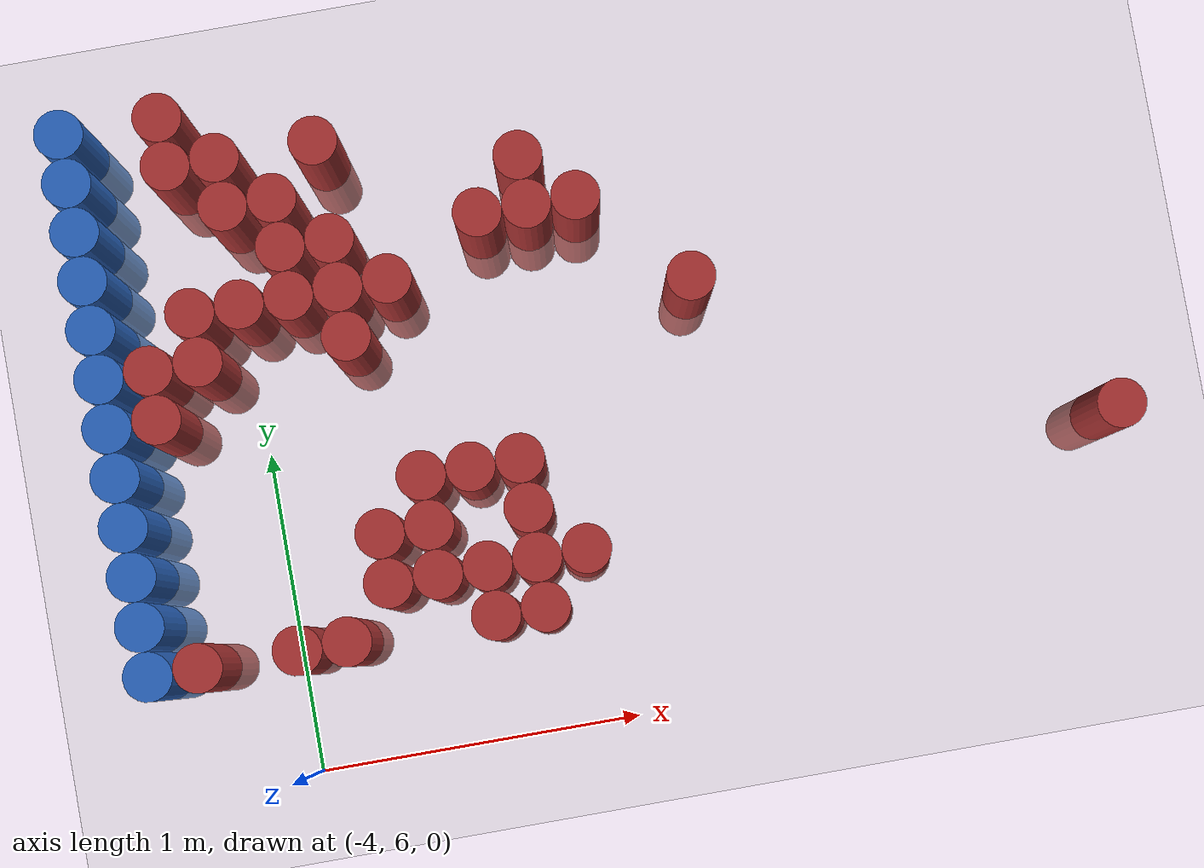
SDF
<sdf version="1.6">
 <world name="default">
  <model name="ground_plane">
   <static>1</static>
   <link name="link">
    <collision name="collision">
     <geometry><plane><normal>0 0 1</normal><size>100 100</size></plane></geometry>
     <surface><friction><ode><mu>100</mu><mu2>50</mu2></ode></friction></surface>
    </collision>
    <visual name="visual">
     <cast_shadows>0</cast_shadows>
     <geometry><plane><normal>0 0 1</normal><size>100 100</size></plane></geometry>
     <material>
      <script><uri>file://media/materials/scripts/gazebo.material</uri><name>Gazebo/Grey</name></script>
     </material>
    </visual>
   </link>
  </model>
  <model name="unit_cylinder_104">
   <static>1</static>
   <pose>-4.425000 6.375000 0.000000 0.000000 0.000000 0.000000</pose>
   <link name="link">
    <inertial>
     <mass>1</mass>
     <inertia><ixx>0.145833</ixx><ixy>0</ixy><ixz>0</ixz><iyy>0.145833</iyy><iyz>0</iyz><izz>0.125</izz></inertia>
    </inertial>
    <collision name="collision">
     <geometry><cylinder><radius>0.075000</radius><length>1</length></cylinder></geometry>
    </collision>
    <visual name="visual">
     <geometry><cylinder><radius>0.075000</radius><length>1</length></cylinder></geometry>
     <material>
      <ambient>0.152000 0.379000 0.720000 1</ambient>
      <diffuse>0.152000 0.379000 0.720000 1</diffuse>
     </material>
     <material>
      <script><name>Gazebo/Grey</name><uri>file://media/materials/scripts/gazebo.material</uri></script>
     </material>
    </visual>
   </link>
  </model>
  <model name="unit_cylinder_105">
   <static>1</static>
   <pose>-4.425000 6.525000 0.000000 0.000000 0.000000 0.000000</pose>
   <link name="link">
    <inertial>
     <mass>1</mass>
     <inertia><ixx>0.145833</ixx><ixy>0</ixy><ixz>0</ixz><iyy>0.145833</iyy><iyz>0</iyz><izz>0.125</izz></inertia>
    </inertial>
    <collision name="collision">
     <geometry><cylinder><radius>0.075000</radius><length>1</length></cylinder></geometry>
    </collision>
    <visual name="visual">
     <geometry><cylinder><radius>0.075000</radius><length>1</length></cylinder></geometry>
     <material>
      <ambient>0.152000 0.379000 0.720000 1</ambient>
      <diffuse>0.152000 0.379000 0.720000 1</diffuse>
     </material>
     <material>
      <script><name>Gazebo/Grey</name><uri>file://media/materials/scripts/gazebo.material</uri></script>
     </material>
    </visual>
   </link>
  </model>
  <model name="unit_cylinder_106">
   <static>1</static>
   <pose>-4.425000 6.675000 0.000000 0.000000 0.000000 0.000000</pose>
   <link name="link">
    <inertial>
     <mass>1</mass>
     <inertia><ixx>0.145833</ixx><ixy>0</ixy><ixz>0</ixz><iyy>0.145833</iyy><iyz>0</iyz><izz>0.125</izz></inertia>
    </inertial>
    <collision name="collision">
     <geometry><cylinder><radius>0.075000</radius><length>1</length></cylinder></geometry>
    </collision>
    <visual name="visual">
     <geometry><cylinder><radius>0.075000</radius><length>1</length></cylinder></geometry>
     <material>
      <ambient>0.152000 0.379000 0.720000 1</ambient>
      <diffuse>0.152000 0.379000 0.720000 1</diffuse>
     </material>
     <material>
      <script><name>Gazebo/Grey</name><uri>file://media/materials/scripts/gazebo.material</uri></script>
     </material>
    </visual>
   </link>
  </model>
  <model name="unit_cylinder_107">
   <static>1</static>
   <pose>-4.425000 6.825000 0.000000 0.000000 0.000000 0.000000</pose>
   <link name="link">
    <inertial>
     <mass>1</mass>
     <inertia><ixx>0.145833</ixx><ixy>0</ixy><ixz>0</ixz><iyy>0.145833</iyy><iyz>0</iyz><izz>0.125</izz></inertia>
    </inertial>
    <collision name="collision">
     <geometry><cylinder><radius>0.075000</radius><length>1</length></cylinder></geometry>
    </collision>
    <visual name="visual">
     <geometry><cylinder><radius>0.075000</radius><length>1</length></cylinder></geometry>
     <material>
      <ambient>0.152000 0.379000 0.720000 1</ambient>
      <diffuse>0.152000 0.379000 0.720000 1</diffuse>
     </material>
     <material>
      <script><name>Gazebo/Grey</name><uri>file://media/materials/scripts/gazebo.material</uri></script>
     </material>
    </visual>
   </link>
  </model>
  <model name="unit_cylinder_108">
   <static>1</static>
   <pose>-4.425000 6.975000 0.000000 0.000000 0.000000 0.000000</pose>
   <link name="link">
    <inertial>
     <mass>1</mass>
     <inertia><ixx>0.145833</ixx><ixy>0</ixy><ixz>0</ixz><iyy>0.145833</iyy><iyz>0</iyz><izz>0.125</izz></inertia>
    </inertial>
    <collision name="collision">
     <geometry><cylinder><radius>0.075000</radius><length>1</length></cylinder></geometry>
    </collision>
    <visual name="visual">
     <geometry><cylinder><radius>0.075000</radius><length>1</length></cylinder></geometry>
     <material>
      <ambient>0.152000 0.379000 0.720000 1</ambient>
      <diffuse>0.152000 0.379000 0.720000 1</diffuse>
     </material>
     <material>
      <script><name>Gazebo/Grey</name><uri>file://media/materials/scripts/gazebo.material</uri></script>
     </material>
    </visual>
   </link>
  </model>
  <model name="unit_cylinder_109">
   <static>1</static>
   <pose>-4.425000 7.125000 0.000000 0.000000 0.000000 0.000000</pose>
   <link name="link">
    <inertial>
     <mass>1</mass>
     <inertia><ixx>0.145833</ixx><ixy>0</ixy><ixz>0</ixz><iyy>0.145833</iyy><iyz>0</iyz><izz>0.125</izz></inertia>
    </inertial>
    <collision name="collision">
     <geometry><cylinder><radius>0.075000</radius><length>1</length></cylinder></geometry>
    </collision>
    <visual name="visual">
     <geometry><cylinder><radius>0.075000</radius><length>1</length></cylinder></geometry>
     <material>
      <ambient>0.152000 0.379000 0.720000 1</ambient>
      <diffuse>0.152000 0.379000 0.720000 1</diffuse>
     </material>
     <material>
      <script><name>Gazebo/Grey</name><uri>file://media/materials/scripts/gazebo.material</uri></script>
     </material>
    </visual>
   </link>
  </model>
  <model name="unit_cylinder_110">
   <static>1</static>
   <pose>-4.425000 7.275000 0.000000 0.000000 0.000000 0.000000</pose>
   <link name="link">
    <inertial>
     <mass>1</mass>
     <inertia><ixx>0.145833</ixx><ixy>0</ixy><ixz>0</ixz><iyy>0.145833</iyy><iyz>0</iyz><izz>0.125</izz></inertia>
    </inertial>
    <collision name="collision">
     <geometry><cylinder><radius>0.075000</radius><length>1</length></cylinder></geometry>
    </collision>
    <visual name="visual">
     <geometry><cylinder><radius>0.075000</radius><length>1</length></cylinder></geometry>
     <material>
      <ambient>0.152000 0.379000 0.720000 1</ambient>
      <diffuse>0.152000 0.379000 0.720000 1</diffuse>
     </material>
     <material>
      <script><name>Gazebo/Grey</name><uri>file://media/materials/scripts/gazebo.material</uri></script>
     </material>
    </visual>
   </link>
  </model>
  <model name="unit_cylinder_111">
   <static>1</static>
   <pose>-4.425000 7.425000 0.000000 0.000000 0.000000 0.000000</pose>
   <link name="link">
    <inertial>
     <mass>1</mass>
     <inertia><ixx>0.145833</ixx><ixy>0</ixy><ixz>0</ixz><iyy>0.145833</iyy><iyz>0</iyz><izz>0.125</izz></inertia>
    </inertial>
    <collision name="collision">
     <geometry><cylinder><radius>0.075000</radius><length>1</length></cylinder></geometry>
    </collision>
    <visual name="visual">
     <geometry><cylinder><radius>0.075000</radius><length>1</length></cylinder></geometry>
     <material>
      <ambient>0.152000 0.379000 0.720000 1</ambient>
      <diffuse>0.152000 0.379000 0.720000 1</diffuse>
     </material>
     <material>
      <script><name>Gazebo/Grey</name><uri>file://media/materials/scripts/gazebo.material</uri></script>
     </material>
    </visual>
   </link>
  </model>
  <model name="unit_cylinder_112">
   <static>1</static>
   <pose>-4.425000 7.575000 0.000000 0.000000 0.000000 0.000000</pose>
   <link name="link">
    <inertial>
     <mass>1</mass>
     <inertia><ixx>0.145833</ixx><ixy>0</ixy><ixz>0</ixz><iyy>0.145833</iyy><iyz>0</iyz><izz>0.125</izz></inertia>
    </inertial>
    <collision name="collision">
     <geometry><cylinder><radius>0.075000</radius><length>1</length></cylinder></geometry>
    </collision>
    <visual name="visual">
     <geometry><cylinder><radius>0.075000</radius><length>1</length></cylinder></geometry>
     <material>
      <ambient>0.152000 0.379000 0.720000 1</ambient>
      <diffuse>0.152000 0.379000 0.720000 1</diffuse>
     </material>
     <material>
      <script><name>Gazebo/Grey</name><uri>file://media/materials/scripts/gazebo.material</uri></script>
     </material>
    </visual>
   </link>
  </model>
  <model name="unit_cylinder_113">
   <static>1</static>
   <pose>-4.425000 7.725000 0.000000 0.000000 0.000000 0.000000</pose>
   <link name="link">
    <inertial>
     <mass>1</mass>
     <inertia><ixx>0.145833</ixx><ixy>0</ixy><ixz>0</ixz><iyy>0.145833</iyy><iyz>0</iyz><izz>0.125</izz></inertia>
    </inertial>
    <collision name="collision">
     <geometry><cylinder><radius>0.075000</radius><length>1</length></cylinder></geometry>
    </collision>
    <visual name="visual">
     <geometry><cylinder><radius>0.075000</radius><length>1</length></cylinder></geometry>
     <material>
      <ambient>0.152000 0.379000 0.720000 1</ambient>
      <diffuse>0.152000 0.379000 0.720000 1</diffuse>
     </material>
     <material>
      <script><name>Gazebo/Grey</name><uri>file://media/materials/scripts/gazebo.material</uri></script>
     </material>
    </visual>
   </link>
  </model>
  <model name="unit_cylinder_114">
   <static>1</static>
   <pose>-4.425000 7.875000 0.000000 0.000000 0.000000 0.000000</pose>
   <link name="link">
    <inertial>
     <mass>1</mass>
     <inertia><ixx>0.145833</ixx><ixy>0</ixy><ixz>0</ixz><iyy>0.145833</iyy><iyz>0</iyz><izz>0.125</izz></inertia>
    </inertial>
    <collision name="collision">
     <geometry><cylinder><radius>0.075000</radius><length>1</length></cylinder></geometry>
    </collision>
    <visual name="visual">
     <geometry><cylinder><radius>0.075000</radius><length>1</length></cylinder></geometry>
     <material>
      <ambient>0.152000 0.379000 0.720000 1</ambient>
      <diffuse>0.152000 0.379000 0.720000 1</diffuse>
     </material>
     <material>
      <script><name>Gazebo/Grey</name><uri>file://media/materials/scripts/gazebo.material</uri></script>
     </material>
    </visual>
   </link>
  </model>
  <model name="unit_cylinder_115">
   <static>1</static>
   <pose>-4.425000 8.025000 0.000000 0.000000 0.000000 0.000000</pose>
   <link name="link">
    <inertial>
     <mass>1</mass>
     <inertia><ixx>0.145833</ixx><ixy>0</ixy><ixz>0</ixz><iyy>0.145833</iyy><iyz>0</iyz><izz>0.125</izz></inertia>
    </inertial>
    <collision name="collision">
     <geometry><cylinder><radius>0.075000</radius><length>1</length></cylinder></geometry>
    </collision>
    <visual name="visual">
     <geometry><cylinder><radius>0.075000</radius><length>1</length></cylinder></geometry>
     <material>
      <ambient>0.152000 0.379000 0.720000 1</ambient>
      <diffuse>0.152000 0.379000 0.720000 1</diffuse>
     </material>
     <material>
      <script><name>Gazebo/Grey</name><uri>file://media/materials/scripts/gazebo.material</uri></script>
     </material>
    </visual>
   </link>
  </model>
  <model name="unit_cylinder_133">
   <static>1</static>
   <pose>-4.275000 6.375000 0.000000 0.000000 0.000000 0.000000</pose>
   <link name="link">
    <inertial>
     <mass>1</mass>
     <inertia><ixx>0.145833</ixx><ixy>0</ixy><ixz>0</ixz><iyy>0.145833</iyy><iyz>0</iyz><izz>0.125</izz></inertia>
    </inertial>
    <collision name="collision">
     <geometry><cylinder><radius>0.075000</radius><length>1</length></cylinder></geometry>
    </collision>
    <visual name="visual">
     <geometry><cylinder><radius>0.075000</radius><length>1</length></cylinder></geometry>
     <material>
      <ambient>0.648000 0.192000 0.192000 1</ambient>
      <diffuse>0.648000 0.192000 0.192000 1</diffuse>
     </material>
     <material>
      <script><name>Gazebo/Grey</name><uri>file://media/materials/scripts/gazebo.material</uri></script>
     </material>
    </visual>
   </link>
  </model>
  <model name="unit_cylinder_134">
   <static>1</static>
   <pose>-4.275000 7.125000 0.000000 0.000000 0.000000 0.000000</pose>
   <link name="link">
    <inertial>
     <mass>1</mass>
     <inertia><ixx>0.145833</ixx><ixy>0</ixy><ixz>0</ixz><iyy>0.145833</iyy><iyz>0</iyz><izz>0.125</izz></inertia>
    </inertial>
    <collision name="collision">
     <geometry><cylinder><radius>0.075000</radius><length>1</length></cylinder></geometry>
    </collision>
    <visual name="visual">
     <geometry><cylinder><radius>0.075000</radius><length>1</length></cylinder></geometry>
     <material>
      <ambient>0.648000 0.192000 0.192000 1</ambient>
      <diffuse>0.648000 0.192000 0.192000 1</diffuse>
     </material>
     <material>
      <script><name>Gazebo/Grey</name><uri>file://media/materials/scripts/gazebo.material</uri></script>
     </material>
    </visual>
   </link>
  </model>
  <model name="unit_cylinder_135">
   <static>1</static>
   <pose>-4.275000 7.275000 0.000000 0.000000 0.000000 0.000000</pose>
   <link name="link">
    <inertial>
     <mass>1</mass>
     <inertia><ixx>0.145833</ixx><ixy>0</ixy><ixz>0</ixz><iyy>0.145833</iyy><iyz>0</iyz><izz>0.125</izz></inertia>
    </inertial>
    <collision name="collision">
     <geometry><cylinder><radius>0.075000</radius><length>1</length></cylinder></geometry>
    </collision>
    <visual name="visual">
     <geometry><cylinder><radius>0.075000</radius><length>1</length></cylinder></geometry>
     <material>
      <ambient>0.648000 0.192000 0.192000 1</ambient>
      <diffuse>0.648000 0.192000 0.192000 1</diffuse>
     </material>
     <material>
      <script><name>Gazebo/Grey</name><uri>file://media/materials/scripts/gazebo.material</uri></script>
     </material>
    </visual>
   </link>
  </model>
  <model name="unit_cylinder_146">
   <static>1</static>
   <pose>-4.125000 7.275000 0.000000 0.000000 0.000000 0.000000</pose>
   <link name="link">
    <inertial>
     <mass>1</mass>
     <inertia><ixx>0.145833</ixx><ixy>0</ixy><ixz>0</ixz><iyy>0.145833</iyy><iyz>0</iyz><izz>0.125</izz></inertia>
    </inertial>
    <collision name="collision">
     <geometry><cylinder><radius>0.075000</radius><length>1</length></cylinder></geometry>
    </collision>
    <visual name="visual">
     <geometry><cylinder><radius>0.075000</radius><length>1</length></cylinder></geometry>
     <material>
      <ambient>0.648000 0.192000 0.192000 1</ambient>
      <diffuse>0.648000 0.192000 0.192000 1</diffuse>
     </material>
     <material>
      <script><name>Gazebo/Grey</name><uri>file://media/materials/scripts/gazebo.material</uri></script>
     </material>
    </visual>
   </link>
  </model>
  <model name="unit_cylinder_147">
   <static>1</static>
   <pose>-4.125000 7.425000 0.000000 0.000000 0.000000 0.000000</pose>
   <link name="link">
    <inertial>
     <mass>1</mass>
     <inertia><ixx>0.145833</ixx><ixy>0</ixy><ixz>0</ixz><iyy>0.145833</iyy><iyz>0</iyz><izz>0.125</izz></inertia>
    </inertial>
    <collision name="collision">
     <geometry><cylinder><radius>0.075000</radius><length>1</length></cylinder></geometry>
    </collision>
    <visual name="visual">
     <geometry><cylinder><radius>0.075000</radius><length>1</length></cylinder></geometry>
     <material>
      <ambient>0.648000 0.192000 0.192000 1</ambient>
      <diffuse>0.648000 0.192000 0.192000 1</diffuse>
     </material>
     <material>
      <script><name>Gazebo/Grey</name><uri>file://media/materials/scripts/gazebo.material</uri></script>
     </material>
    </visual>
   </link>
  </model>
  <model name="unit_cylinder_148">
   <static>1</static>
   <pose>-4.125000 7.875000 0.000000 0.000000 0.000000 0.000000</pose>
   <link name="link">
    <inertial>
     <mass>1</mass>
     <inertia><ixx>0.145833</ixx><ixy>0</ixy><ixz>0</ixz><iyy>0.145833</iyy><iyz>0</iyz><izz>0.125</izz></inertia>
    </inertial>
    <collision name="collision">
     <geometry><cylinder><radius>0.075000</radius><length>1</length></cylinder></geometry>
    </collision>
    <visual name="visual">
     <geometry><cylinder><radius>0.075000</radius><length>1</length></cylinder></geometry>
     <material>
      <ambient>0.648000 0.192000 0.192000 1</ambient>
      <diffuse>0.648000 0.192000 0.192000 1</diffuse>
     </material>
     <material>
      <script><name>Gazebo/Grey</name><uri>file://media/materials/scripts/gazebo.material</uri></script>
     </material>
    </visual>
   </link>
  </model>
  <model name="unit_cylinder_149">
   <static>1</static>
   <pose>-4.125000 8.025000 0.000000 0.000000 0.000000 0.000000</pose>
   <link name="link">
    <inertial>
     <mass>1</mass>
     <inertia><ixx>0.145833</ixx><ixy>0</ixy><ixz>0</ixz><iyy>0.145833</iyy><iyz>0</iyz><izz>0.125</izz></inertia>
    </inertial>
    <collision name="collision">
     <geometry><cylinder><radius>0.075000</radius><length>1</length></cylinder></geometry>
    </collision>
    <visual name="visual">
     <geometry><cylinder><radius>0.075000</radius><length>1</length></cylinder></geometry>
     <material>
      <ambient>0.648000 0.192000 0.192000 1</ambient>
      <diffuse>0.648000 0.192000 0.192000 1</diffuse>
     </material>
     <material>
      <script><name>Gazebo/Grey</name><uri>file://media/materials/scripts/gazebo.material</uri></script>
     </material>
    </visual>
   </link>
  </model>
  <model name="unit_cylinder_156">
   <static>1</static>
   <pose>-3.975000 6.375000 0.000000 0.000000 0.000000 0.000000</pose>
   <link name="link">
    <inertial>
     <mass>1</mass>
     <inertia><ixx>0.145833</ixx><ixy>0</ixy><ixz>0</ixz><iyy>0.145833</iyy><iyz>0</iyz><izz>0.125</izz></inertia>
    </inertial>
    <collision name="collision">
     <geometry><cylinder><radius>0.075000</radius><length>1</length></cylinder></geometry>
    </collision>
    <visual name="visual">
     <geometry><cylinder><radius>0.075000</radius><length>1</length></cylinder></geometry>
     <material>
      <ambient>0.648000 0.192000 0.192000 1</ambient>
      <diffuse>0.648000 0.192000 0.192000 1</diffuse>
     </material>
     <material>
      <script><name>Gazebo/Grey</name><uri>file://media/materials/scripts/gazebo.material</uri></script>
     </material>
    </visual>
   </link>
  </model>
  <model name="unit_cylinder_157">
   <static>1</static>
   <pose>-3.975000 7.425000 0.000000 0.000000 0.000000 0.000000</pose>
   <link name="link">
    <inertial>
     <mass>1</mass>
     <inertia><ixx>0.145833</ixx><ixy>0</ixy><ixz>0</ixz><iyy>0.145833</iyy><iyz>0</iyz><izz>0.125</izz></inertia>
    </inertial>
    <collision name="collision">
     <geometry><cylinder><radius>0.075000</radius><length>1</length></cylinder></geometry>
    </collision>
    <visual name="visual">
     <geometry><cylinder><radius>0.075000</radius><length>1</length></cylinder></geometry>
     <material>
      <ambient>0.648000 0.192000 0.192000 1</ambient>
      <diffuse>0.648000 0.192000 0.192000 1</diffuse>
     </material>
     <material>
      <script><name>Gazebo/Grey</name><uri>file://media/materials/scripts/gazebo.material</uri></script>
     </material>
    </visual>
   </link>
  </model>
  <model name="unit_cylinder_158">
   <static>1</static>
   <pose>-3.975000 7.725000 0.000000 0.000000 0.000000 0.000000</pose>
   <link name="link">
    <inertial>
     <mass>1</mass>
     <inertia><ixx>0.145833</ixx><ixy>0</ixy><ixz>0</ixz><iyy>0.145833</iyy><iyz>0</iyz><izz>0.125</izz></inertia>
    </inertial>
    <collision name="collision">
     <geometry><cylinder><radius>0.075000</radius><length>1</length></cylinder></geometry>
    </collision>
    <visual name="visual">
     <geometry><cylinder><radius>0.075000</radius><length>1</length></cylinder></geometry>
     <material>
      <ambient>0.648000 0.192000 0.192000 1</ambient>
      <diffuse>0.648000 0.192000 0.192000 1</diffuse>
     </material>
     <material>
      <script><name>Gazebo/Grey</name><uri>file://media/materials/scripts/gazebo.material</uri></script>
     </material>
    </visual>
   </link>
  </model>
  <model name="unit_cylinder_159">
   <static>1</static>
   <pose>-3.975000 7.875000 0.000000 0.000000 0.000000 0.000000</pose>
   <link name="link">
    <inertial>
     <mass>1</mass>
     <inertia><ixx>0.145833</ixx><ixy>0</ixy><ixz>0</ixz><iyy>0.145833</iyy><iyz>0</iyz><izz>0.125</izz></inertia>
    </inertial>
    <collision name="collision">
     <geometry><cylinder><radius>0.075000</radius><length>1</length></cylinder></geometry>
    </collision>
    <visual name="visual">
     <geometry><cylinder><radius>0.075000</radius><length>1</length></cylinder></geometry>
     <material>
      <ambient>0.648000 0.192000 0.192000 1</ambient>
      <diffuse>0.648000 0.192000 0.192000 1</diffuse>
     </material>
     <material>
      <script><name>Gazebo/Grey</name><uri>file://media/materials/scripts/gazebo.material</uri></script>
     </material>
    </visual>
   </link>
  </model>
  <model name="unit_cylinder_162">
   <static>1</static>
   <pose>-3.825000 6.375000 0.000000 0.000000 0.000000 0.000000</pose>
   <link name="link">
    <inertial>
     <mass>1</mass>
     <inertia><ixx>0.145833</ixx><ixy>0</ixy><ixz>0</ixz><iyy>0.145833</iyy><iyz>0</iyz><izz>0.125</izz></inertia>
    </inertial>
    <collision name="collision">
     <geometry><cylinder><radius>0.075000</radius><length>1</length></cylinder></geometry>
    </collision>
    <visual name="visual">
     <geometry><cylinder><radius>0.075000</radius><length>1</length></cylinder></geometry>
     <material>
      <ambient>0.648000 0.192000 0.192000 1</ambient>
      <diffuse>0.648000 0.192000 0.192000 1</diffuse>
     </material>
     <material>
      <script><name>Gazebo/Grey</name><uri>file://media/materials/scripts/gazebo.material</uri></script>
     </material>
    </visual>
   </link>
  </model>
  <model name="unit_cylinder_163">
   <static>1</static>
   <pose>-3.825000 7.425000 0.000000 0.000000 0.000000 0.000000</pose>
   <link name="link">
    <inertial>
     <mass>1</mass>
     <inertia><ixx>0.145833</ixx><ixy>0</ixy><ixz>0</ixz><iyy>0.145833</iyy><iyz>0</iyz><izz>0.125</izz></inertia>
    </inertial>
    <collision name="collision">
     <geometry><cylinder><radius>0.075000</radius><length>1</length></cylinder></geometry>
    </collision>
    <visual name="visual">
     <geometry><cylinder><radius>0.075000</radius><length>1</length></cylinder></geometry>
     <material>
      <ambient>0.648000 0.192000 0.192000 1</ambient>
      <diffuse>0.648000 0.192000 0.192000 1</diffuse>
     </material>
     <material>
      <script><name>Gazebo/Grey</name><uri>file://media/materials/scripts/gazebo.material</uri></script>
     </material>
    </visual>
   </link>
  </model>
  <model name="unit_cylinder_164">
   <static>1</static>
   <pose>-3.825000 7.575000 0.000000 0.000000 0.000000 0.000000</pose>
   <link name="link">
    <inertial>
     <mass>1</mass>
     <inertia><ixx>0.145833</ixx><ixy>0</ixy><ixz>0</ixz><iyy>0.145833</iyy><iyz>0</iyz><izz>0.125</izz></inertia>
    </inertial>
    <collision name="collision">
     <geometry><cylinder><radius>0.075000</radius><length>1</length></cylinder></geometry>
    </collision>
    <visual name="visual">
     <geometry><cylinder><radius>0.075000</radius><length>1</length></cylinder></geometry>
     <material>
      <ambient>0.648000 0.192000 0.192000 1</ambient>
      <diffuse>0.648000 0.192000 0.192000 1</diffuse>
     </material>
     <material>
      <script><name>Gazebo/Grey</name><uri>file://media/materials/scripts/gazebo.material</uri></script>
     </material>
    </visual>
   </link>
  </model>
  <model name="unit_cylinder_165">
   <static>1</static>
   <pose>-3.825000 7.725000 0.000000 0.000000 0.000000 0.000000</pose>
   <link name="link">
    <inertial>
     <mass>1</mass>
     <inertia><ixx>0.145833</ixx><ixy>0</ixy><ixz>0</ixz><iyy>0.145833</iyy><iyz>0</iyz><izz>0.125</izz></inertia>
    </inertial>
    <collision name="collision">
     <geometry><cylinder><radius>0.075000</radius><length>1</length></cylinder></geometry>
    </collision>
    <visual name="visual">
     <geometry><cylinder><radius>0.075000</radius><length>1</length></cylinder></geometry>
     <material>
      <ambient>0.648000 0.192000 0.192000 1</ambient>
      <diffuse>0.648000 0.192000 0.192000 1</diffuse>
     </material>
     <material>
      <script><name>Gazebo/Grey</name><uri>file://media/materials/scripts/gazebo.material</uri></script>
     </material>
    </visual>
   </link>
  </model>
  <model name="unit_cylinder_168">
   <static>1</static>
   <pose>-3.675000 6.525000 0.000000 0.000000 0.000000 0.000000</pose>
   <link name="link">
    <inertial>
     <mass>1</mass>
     <inertia><ixx>0.145833</ixx><ixy>0</ixy><ixz>0</ixz><iyy>0.145833</iyy><iyz>0</iyz><izz>0.125</izz></inertia>
    </inertial>
    <collision name="collision">
     <geometry><cylinder><radius>0.075000</radius><length>1</length></cylinder></geometry>
    </collision>
    <visual name="visual">
     <geometry><cylinder><radius>0.075000</radius><length>1</length></cylinder></geometry>
     <material>
      <ambient>0.648000 0.192000 0.192000 1</ambient>
      <diffuse>0.648000 0.192000 0.192000 1</diffuse>
     </material>
     <material>
      <script><name>Gazebo/Grey</name><uri>file://media/materials/scripts/gazebo.material</uri></script>
     </material>
    </visual>
   </link>
  </model>
  <model name="unit_cylinder_169">
   <static>1</static>
   <pose>-3.675000 6.675000 0.000000 0.000000 0.000000 0.000000</pose>
   <link name="link">
    <inertial>
     <mass>1</mass>
     <inertia><ixx>0.145833</ixx><ixy>0</ixy><ixz>0</ixz><iyy>0.145833</iyy><iyz>0</iyz><izz>0.125</izz></inertia>
    </inertial>
    <collision name="collision">
     <geometry><cylinder><radius>0.075000</radius><length>1</length></cylinder></geometry>
    </collision>
    <visual name="visual">
     <geometry><cylinder><radius>0.075000</radius><length>1</length></cylinder></geometry>
     <material>
      <ambient>0.648000 0.192000 0.192000 1</ambient>
      <diffuse>0.648000 0.192000 0.192000 1</diffuse>
     </material>
     <material>
      <script><name>Gazebo/Grey</name><uri>file://media/materials/scripts/gazebo.material</uri></script>
     </material>
    </visual>
   </link>
  </model>
  <model name="unit_cylinder_170">
   <static>1</static>
   <pose>-3.675000 7.275000 0.000000 0.000000 0.000000 0.000000</pose>
   <link name="link">
    <inertial>
     <mass>1</mass>
     <inertia><ixx>0.145833</ixx><ixy>0</ixy><ixz>0</ixz><iyy>0.145833</iyy><iyz>0</iyz><izz>0.125</izz></inertia>
    </inertial>
    <collision name="collision">
     <geometry><cylinder><radius>0.075000</radius><length>1</length></cylinder></geometry>
    </collision>
    <visual name="visual">
     <geometry><cylinder><radius>0.075000</radius><length>1</length></cylinder></geometry>
     <material>
      <ambient>0.648000 0.192000 0.192000 1</ambient>
      <diffuse>0.648000 0.192000 0.192000 1</diffuse>
     </material>
     <material>
      <script><name>Gazebo/Grey</name><uri>file://media/materials/scripts/gazebo.material</uri></script>
     </material>
    </visual>
   </link>
  </model>
  <model name="unit_cylinder_171">
   <static>1</static>
   <pose>-3.675000 7.425000 0.000000 0.000000 0.000000 0.000000</pose>
   <link name="link">
    <inertial>
     <mass>1</mass>
     <inertia><ixx>0.145833</ixx><ixy>0</ixy><ixz>0</ixz><iyy>0.145833</iyy><iyz>0</iyz><izz>0.125</izz></inertia>
    </inertial>
    <collision name="collision">
     <geometry><cylinder><radius>0.075000</radius><length>1</length></cylinder></geometry>
    </collision>
    <visual name="visual">
     <geometry><cylinder><radius>0.075000</radius><length>1</length></cylinder></geometry>
     <material>
      <ambient>0.648000 0.192000 0.192000 1</ambient>
      <diffuse>0.648000 0.192000 0.192000 1</diffuse>
     </material>
     <material>
      <script><name>Gazebo/Grey</name><uri>file://media/materials/scripts/gazebo.material</uri></script>
     </material>
    </visual>
   </link>
  </model>
  <model name="unit_cylinder_172">
   <static>1</static>
   <pose>-3.675000 7.575000 0.000000 0.000000 0.000000 0.000000</pose>
   <link name="link">
    <inertial>
     <mass>1</mass>
     <inertia><ixx>0.145833</ixx><ixy>0</ixy><ixz>0</ixz><iyy>0.145833</iyy><iyz>0</iyz><izz>0.125</izz></inertia>
    </inertial>
    <collision name="collision">
     <geometry><cylinder><radius>0.075000</radius><length>1</length></cylinder></geometry>
    </collision>
    <visual name="visual">
     <geometry><cylinder><radius>0.075000</radius><length>1</length></cylinder></geometry>
     <material>
      <ambient>0.648000 0.192000 0.192000 1</ambient>
      <diffuse>0.648000 0.192000 0.192000 1</diffuse>
     </material>
     <material>
      <script><name>Gazebo/Grey</name><uri>file://media/materials/scripts/gazebo.material</uri></script>
     </material>
    </visual>
   </link>
  </model>
  <model name="unit_cylinder_173">
   <static>1</static>
   <pose>-3.675000 7.875000 0.000000 0.000000 0.000000 0.000000</pose>
   <link name="link">
    <inertial>
     <mass>1</mass>
     <inertia><ixx>0.145833</ixx><ixy>0</ixy><ixz>0</ixz><iyy>0.145833</iyy><iyz>0</iyz><izz>0.125</izz></inertia>
    </inertial>
    <collision name="collision">
     <geometry><cylinder><radius>0.075000</radius><length>1</length></cylinder></geometry>
    </collision>
    <visual name="visual">
     <geometry><cylinder><radius>0.075000</radius><length>1</length></cylinder></geometry>
     <material>
      <ambient>0.648000 0.192000 0.192000 1</ambient>
      <diffuse>0.648000 0.192000 0.192000 1</diffuse>
     </material>
     <material>
      <script><name>Gazebo/Grey</name><uri>file://media/materials/scripts/gazebo.material</uri></script>
     </material>
    </visual>
   </link>
  </model>
  <model name="unit_cylinder_175">
   <static>1</static>
   <pose>-3.525000 6.525000 0.000000 0.000000 0.000000 0.000000</pose>
   <link name="link">
    <inertial>
     <mass>1</mass>
     <inertia><ixx>0.145833</ixx><ixy>0</ixy><ixz>0</ixz><iyy>0.145833</iyy><iyz>0</iyz><izz>0.125</izz></inertia>
    </inertial>
    <collision name="collision">
     <geometry><cylinder><radius>0.075000</radius><length>1</length></cylinder></geometry>
    </collision>
    <visual name="visual">
     <geometry><cylinder><radius>0.075000</radius><length>1</length></cylinder></geometry>
     <material>
      <ambient>0.648000 0.192000 0.192000 1</ambient>
      <diffuse>0.648000 0.192000 0.192000 1</diffuse>
     </material>
     <material>
      <script><name>Gazebo/Grey</name><uri>file://media/materials/scripts/gazebo.material</uri></script>
     </material>
    </visual>
   </link>
  </model>
  <model name="unit_cylinder_176">
   <static>1</static>
   <pose>-3.525000 6.675000 0.000000 0.000000 0.000000 0.000000</pose>
   <link name="link">
    <inertial>
     <mass>1</mass>
     <inertia><ixx>0.145833</ixx><ixy>0</ixy><ixz>0</ixz><iyy>0.145833</iyy><iyz>0</iyz><izz>0.125</izz></inertia>
    </inertial>
    <collision name="collision">
     <geometry><cylinder><radius>0.075000</radius><length>1</length></cylinder></geometry>
    </collision>
    <visual name="visual">
     <geometry><cylinder><radius>0.075000</radius><length>1</length></cylinder></geometry>
     <material>
      <ambient>0.648000 0.192000 0.192000 1</ambient>
      <diffuse>0.648000 0.192000 0.192000 1</diffuse>
     </material>
     <material>
      <script><name>Gazebo/Grey</name><uri>file://media/materials/scripts/gazebo.material</uri></script>
     </material>
    </visual>
   </link>
  </model>
  <model name="unit_cylinder_177">
   <static>1</static>
   <pose>-3.525000 6.825000 0.000000 0.000000 0.000000 0.000000</pose>
   <link name="link">
    <inertial>
     <mass>1</mass>
     <inertia><ixx>0.145833</ixx><ixy>0</ixy><ixz>0</ixz><iyy>0.145833</iyy><iyz>0</iyz><izz>0.125</izz></inertia>
    </inertial>
    <collision name="collision">
     <geometry><cylinder><radius>0.075000</radius><length>1</length></cylinder></geometry>
    </collision>
    <visual name="visual">
     <geometry><cylinder><radius>0.075000</radius><length>1</length></cylinder></geometry>
     <material>
      <ambient>0.648000 0.192000 0.192000 1</ambient>
      <diffuse>0.648000 0.192000 0.192000 1</diffuse>
     </material>
     <material>
      <script><name>Gazebo/Grey</name><uri>file://media/materials/scripts/gazebo.material</uri></script>
     </material>
    </visual>
   </link>
  </model>
  <model name="unit_cylinder_178">
   <static>1</static>
   <pose>-3.525000 7.425000 0.000000 0.000000 0.000000 0.000000</pose>
   <link name="link">
    <inertial>
     <mass>1</mass>
     <inertia><ixx>0.145833</ixx><ixy>0</ixy><ixz>0</ixz><iyy>0.145833</iyy><iyz>0</iyz><izz>0.125</izz></inertia>
    </inertial>
    <collision name="collision">
     <geometry><cylinder><radius>0.075000</radius><length>1</length></cylinder></geometry>
    </collision>
    <visual name="visual">
     <geometry><cylinder><radius>0.075000</radius><length>1</length></cylinder></geometry>
     <material>
      <ambient>0.648000 0.192000 0.192000 1</ambient>
      <diffuse>0.648000 0.192000 0.192000 1</diffuse>
     </material>
     <material>
      <script><name>Gazebo/Grey</name><uri>file://media/materials/scripts/gazebo.material</uri></script>
     </material>
    </visual>
   </link>
  </model>
  <model name="unit_cylinder_183">
   <static>1</static>
   <pose>-3.375000 6.375000 0.000000 0.000000 0.000000 0.000000</pose>
   <link name="link">
    <inertial>
     <mass>1</mass>
     <inertia><ixx>0.145833</ixx><ixy>0</ixy><ixz>0</ixz><iyy>0.145833</iyy><iyz>0</iyz><izz>0.125</izz></inertia>
    </inertial>
    <collision name="collision">
     <geometry><cylinder><radius>0.075000</radius><length>1</length></cylinder></geometry>
    </collision>
    <visual name="visual">
     <geometry><cylinder><radius>0.075000</radius><length>1</length></cylinder></geometry>
     <material>
      <ambient>0.648000 0.192000 0.192000 1</ambient>
      <diffuse>0.648000 0.192000 0.192000 1</diffuse>
     </material>
     <material>
      <script><name>Gazebo/Grey</name><uri>file://media/materials/scripts/gazebo.material</uri></script>
     </material>
    </visual>
   </link>
  </model>
  <model name="unit_cylinder_184">
   <static>1</static>
   <pose>-3.375000 6.525000 0.000000 0.000000 0.000000 0.000000</pose>
   <link name="link">
    <inertial>
     <mass>1</mass>
     <inertia><ixx>0.145833</ixx><ixy>0</ixy><ixz>0</ixz><iyy>0.145833</iyy><iyz>0</iyz><izz>0.125</izz></inertia>
    </inertial>
    <collision name="collision">
     <geometry><cylinder><radius>0.075000</radius><length>1</length></cylinder></geometry>
    </collision>
    <visual name="visual">
     <geometry><cylinder><radius>0.075000</radius><length>1</length></cylinder></geometry>
     <material>
      <ambient>0.648000 0.192000 0.192000 1</ambient>
      <diffuse>0.648000 0.192000 0.192000 1</diffuse>
     </material>
     <material>
      <script><name>Gazebo/Grey</name><uri>file://media/materials/scripts/gazebo.material</uri></script>
     </material>
    </visual>
   </link>
  </model>
  <model name="unit_cylinder_185">
   <static>1</static>
   <pose>-3.375000 6.825000 0.000000 0.000000 0.000000 0.000000</pose>
   <link name="link">
    <inertial>
     <mass>1</mass>
     <inertia><ixx>0.145833</ixx><ixy>0</ixy><ixz>0</ixz><iyy>0.145833</iyy><iyz>0</iyz><izz>0.125</izz></inertia>
    </inertial>
    <collision name="collision">
     <geometry><cylinder><radius>0.075000</radius><length>1</length></cylinder></geometry>
    </collision>
    <visual name="visual">
     <geometry><cylinder><radius>0.075000</radius><length>1</length></cylinder></geometry>
     <material>
      <ambient>0.648000 0.192000 0.192000 1</ambient>
      <diffuse>0.648000 0.192000 0.192000 1</diffuse>
     </material>
     <material>
      <script><name>Gazebo/Grey</name><uri>file://media/materials/scripts/gazebo.material</uri></script>
     </material>
    </visual>
   </link>
  </model>
  <model name="unit_cylinder_187">
   <static>1</static>
   <pose>-3.225000 6.375000 0.000000 0.000000 0.000000 0.000000</pose>
   <link name="link">
    <inertial>
     <mass>1</mass>
     <inertia><ixx>0.145833</ixx><ixy>0</ixy><ixz>0</ixz><iyy>0.145833</iyy><iyz>0</iyz><izz>0.125</izz></inertia>
    </inertial>
    <collision name="collision">
     <geometry><cylinder><radius>0.075000</radius><length>1</length></cylinder></geometry>
    </collision>
    <visual name="visual">
     <geometry><cylinder><radius>0.075000</radius><length>1</length></cylinder></geometry>
     <material>
      <ambient>0.648000 0.192000 0.192000 1</ambient>
      <diffuse>0.648000 0.192000 0.192000 1</diffuse>
     </material>
     <material>
      <script><name>Gazebo/Grey</name><uri>file://media/materials/scripts/gazebo.material</uri></script>
     </material>
    </visual>
   </link>
  </model>
  <model name="unit_cylinder_188">
   <static>1</static>
   <pose>-3.225000 6.525000 0.000000 0.000000 0.000000 0.000000</pose>
   <link name="link">
    <inertial>
     <mass>1</mass>
     <inertia><ixx>0.145833</ixx><ixy>0</ixy><ixz>0</ixz><iyy>0.145833</iyy><iyz>0</iyz><izz>0.125</izz></inertia>
    </inertial>
    <collision name="collision">
     <geometry><cylinder><radius>0.075000</radius><length>1</length></cylinder></geometry>
    </collision>
    <visual name="visual">
     <geometry><cylinder><radius>0.075000</radius><length>1</length></cylinder></geometry>
     <material>
      <ambient>0.648000 0.192000 0.192000 1</ambient>
      <diffuse>0.648000 0.192000 0.192000 1</diffuse>
     </material>
     <material>
      <script><name>Gazebo/Grey</name><uri>file://media/materials/scripts/gazebo.material</uri></script>
     </material>
    </visual>
   </link>
  </model>
  <model name="unit_cylinder_189">
   <static>1</static>
   <pose>-3.225000 6.675000 0.000000 0.000000 0.000000 0.000000</pose>
   <link name="link">
    <inertial>
     <mass>1</mass>
     <inertia><ixx>0.145833</ixx><ixy>0</ixy><ixz>0</ixz><iyy>0.145833</iyy><iyz>0</iyz><izz>0.125</izz></inertia>
    </inertial>
    <collision name="collision">
     <geometry><cylinder><radius>0.075000</radius><length>1</length></cylinder></geometry>
    </collision>
    <visual name="visual">
     <geometry><cylinder><radius>0.075000</radius><length>1</length></cylinder></geometry>
     <material>
      <ambient>0.648000 0.192000 0.192000 1</ambient>
      <diffuse>0.648000 0.192000 0.192000 1</diffuse>
     </material>
     <material>
      <script><name>Gazebo/Grey</name><uri>file://media/materials/scripts/gazebo.material</uri></script>
     </material>
    </visual>
   </link>
  </model>
  <model name="unit_cylinder_190">
   <static>1</static>
   <pose>-3.225000 6.825000 0.000000 0.000000 0.000000 0.000000</pose>
   <link name="link">
    <inertial>
     <mass>1</mass>
     <inertia><ixx>0.145833</ixx><ixy>0</ixy><ixz>0</ixz><iyy>0.145833</iyy><iyz>0</iyz><izz>0.125</izz></inertia>
    </inertial>
    <collision name="collision">
     <geometry><cylinder><radius>0.075000</radius><length>1</length></cylinder></geometry>
    </collision>
    <visual name="visual">
     <geometry><cylinder><radius>0.075000</radius><length>1</length></cylinder></geometry>
     <material>
      <ambient>0.648000 0.192000 0.192000 1</ambient>
      <diffuse>0.648000 0.192000 0.192000 1</diffuse>
     </material>
     <material>
      <script><name>Gazebo/Grey</name><uri>file://media/materials/scripts/gazebo.material</uri></script>
     </material>
    </visual>
   </link>
  </model>
  <model name="unit_cylinder_191">
   <static>1</static>
   <pose>-3.225000 7.575000 0.000000 0.000000 0.000000 0.000000</pose>
   <link name="link">
    <inertial>
     <mass>1</mass>
     <inertia><ixx>0.145833</ixx><ixy>0</ixy><ixz>0</ixz><iyy>0.145833</iyy><iyz>0</iyz><izz>0.125</izz></inertia>
    </inertial>
    <collision name="collision">
     <geometry><cylinder><radius>0.075000</radius><length>1</length></cylinder></geometry>
    </collision>
    <visual name="visual">
     <geometry><cylinder><radius>0.075000</radius><length>1</length></cylinder></geometry>
     <material>
      <ambient>0.648000 0.192000 0.192000 1</ambient>
      <diffuse>0.648000 0.192000 0.192000 1</diffuse>
     </material>
     <material>
      <script><name>Gazebo/Grey</name><uri>file://media/materials/scripts/gazebo.material</uri></script>
     </material>
    </visual>
   </link>
  </model>
  <model name="unit_cylinder_192">
   <static>1</static>
   <pose>-3.075000 6.525000 0.000000 0.000000 0.000000 0.000000</pose>
   <link name="link">
    <inertial>
     <mass>1</mass>
     <inertia><ixx>0.145833</ixx><ixy>0</ixy><ixz>0</ixz><iyy>0.145833</iyy><iyz>0</iyz><izz>0.125</izz></inertia>
    </inertial>
    <collision name="collision">
     <geometry><cylinder><radius>0.075000</radius><length>1</length></cylinder></geometry>
    </collision>
    <visual name="visual">
     <geometry><cylinder><radius>0.075000</radius><length>1</length></cylinder></geometry>
     <material>
      <ambient>0.648000 0.192000 0.192000 1</ambient>
      <diffuse>0.648000 0.192000 0.192000 1</diffuse>
     </material>
     <material>
      <script><name>Gazebo/Grey</name><uri>file://media/materials/scripts/gazebo.material</uri></script>
     </material>
    </visual>
   </link>
  </model>
  <model name="unit_cylinder_193">
   <static>1</static>
   <pose>-3.075000 7.575000 0.000000 0.000000 0.000000 0.000000</pose>
   <link name="link">
    <inertial>
     <mass>1</mass>
     <inertia><ixx>0.145833</ixx><ixy>0</ixy><ixz>0</ixz><iyy>0.145833</iyy><iyz>0</iyz><izz>0.125</izz></inertia>
    </inertial>
    <collision name="collision">
     <geometry><cylinder><radius>0.075000</radius><length>1</length></cylinder></geometry>
    </collision>
    <visual name="visual">
     <geometry><cylinder><radius>0.075000</radius><length>1</length></cylinder></geometry>
     <material>
      <ambient>0.648000 0.192000 0.192000 1</ambient>
      <diffuse>0.648000 0.192000 0.192000 1</diffuse>
     </material>
     <material>
      <script><name>Gazebo/Grey</name><uri>file://media/materials/scripts/gazebo.material</uri></script>
     </material>
    </visual>
   </link>
  </model>
  <model name="unit_cylinder_194">
   <static>1</static>
   <pose>-3.075000 7.725000 0.000000 0.000000 0.000000 0.000000</pose>
   <link name="link">
    <inertial>
     <mass>1</mass>
     <inertia><ixx>0.145833</ixx><ixy>0</ixy><ixz>0</ixz><iyy>0.145833</iyy><iyz>0</iyz><izz>0.125</izz></inertia>
    </inertial>
    <collision name="collision">
     <geometry><cylinder><radius>0.075000</radius><length>1</length></cylinder></geometry>
    </collision>
    <visual name="visual">
     <geometry><cylinder><radius>0.075000</radius><length>1</length></cylinder></geometry>
     <material>
      <ambient>0.648000 0.192000 0.192000 1</ambient>
      <diffuse>0.648000 0.192000 0.192000 1</diffuse>
     </material>
     <material>
      <script><name>Gazebo/Grey</name><uri>file://media/materials/scripts/gazebo.material</uri></script>
     </material>
    </visual>
   </link>
  </model>
  <model name="unit_cylinder_197">
   <static>1</static>
   <pose>-2.925000 7.575000 0.000000 0.000000 0.000000 0.000000</pose>
   <link name="link">
    <inertial>
     <mass>1</mass>
     <inertia><ixx>0.145833</ixx><ixy>0</ixy><ixz>0</ixz><iyy>0.145833</iyy><iyz>0</iyz><izz>0.125</izz></inertia>
    </inertial>
    <collision name="collision">
     <geometry><cylinder><radius>0.075000</radius><length>1</length></cylinder></geometry>
    </collision>
    <visual name="visual">
     <geometry><cylinder><radius>0.075000</radius><length>1</length></cylinder></geometry>
     <material>
      <ambient>0.648000 0.192000 0.192000 1</ambient>
      <diffuse>0.648000 0.192000 0.192000 1</diffuse>
     </material>
     <material>
      <script><name>Gazebo/Grey</name><uri>file://media/materials/scripts/gazebo.material</uri></script>
     </material>
    </visual>
   </link>
  </model>
  <model name="unit_cylinder_201">
   <static>1</static>
   <pose>-2.625000 7.275000 0.000000 0.000000 0.000000 0.000000</pose>
   <link name="link">
    <inertial>
     <mass>1</mass>
     <inertia><ixx>0.145833</ixx><ixy>0</ixy><ixz>0</ixz><iyy>0.145833</iyy><iyz>0</iyz><izz>0.125</izz></inertia>
    </inertial>
    <collision name="collision">
     <geometry><cylinder><radius>0.075000</radius><length>1</length></cylinder></geometry>
    </collision>
    <visual name="visual">
     <geometry><cylinder><radius>0.075000</radius><length>1</length></cylinder></geometry>
     <material>
      <ambient>0.648000 0.192000 0.192000 1</ambient>
      <diffuse>0.648000 0.192000 0.192000 1</diffuse>
     </material>
     <material>
      <script><name>Gazebo/Grey</name><uri>file://media/materials/scripts/gazebo.material</uri></script>
     </material>
    </visual>
   </link>
  </model>
  <model name="unit_cylinder_227">
   <static>1</static>
   <pose>-1.425000 6.675000 0.000000 0.000000 0.000000 0.000000</pose>
   <link name="link">
    <inertial>
     <mass>1</mass>
     <inertia><ixx>0.145833</ixx><ixy>0</ixy><ixz>0</ixz><iyy>0.145833</iyy><iyz>0</iyz><izz>0.125</izz></inertia>
    </inertial>
    <collision name="collision">
     <geometry><cylinder><radius>0.075000</radius><length>1</length></cylinder></geometry>
    </collision>
    <visual name="visual">
     <geometry><cylinder><radius>0.075000</radius><length>1</length></cylinder></geometry>
     <material>
      <ambient>0.648000 0.192000 0.192000 1</ambient>
      <diffuse>0.648000 0.192000 0.192000 1</diffuse>
     </material>
     <material>
      <script><name>Gazebo/Grey</name><uri>file://media/materials/scripts/gazebo.material</uri></script>
     </material>
    </visual>
   </link>
  </model>
 </world>
</sdf>
